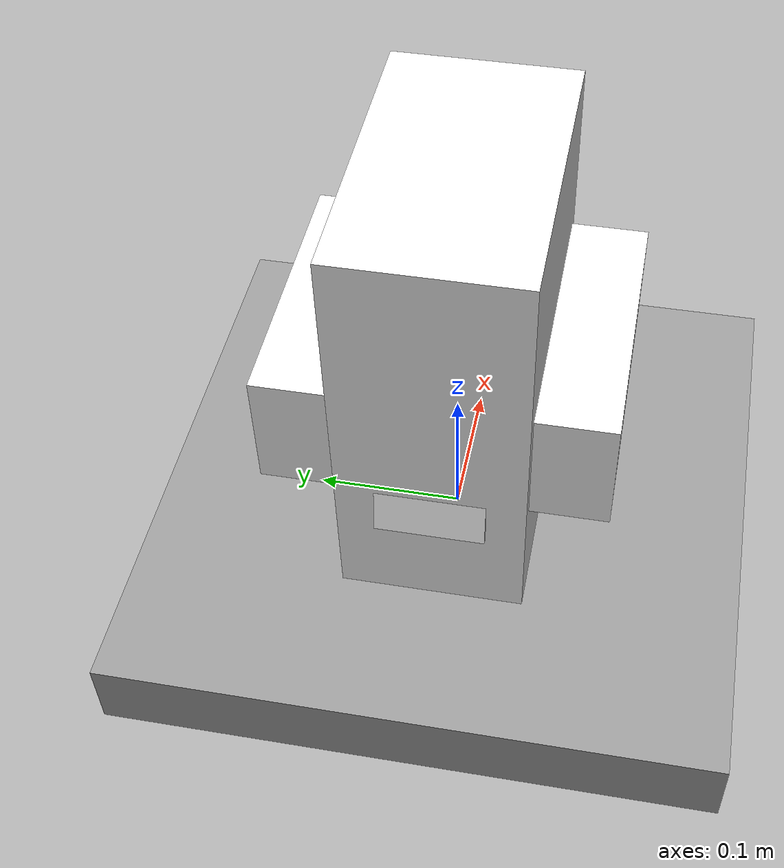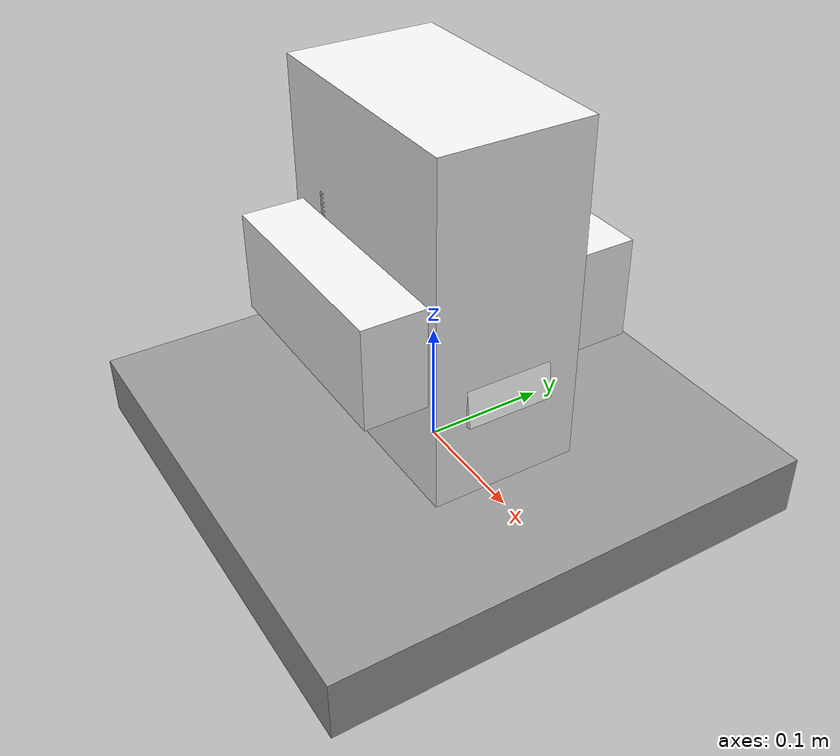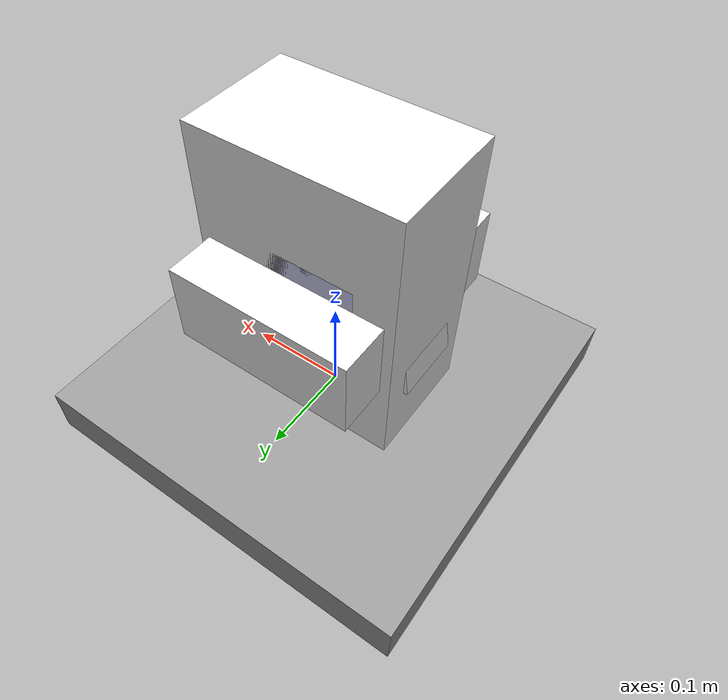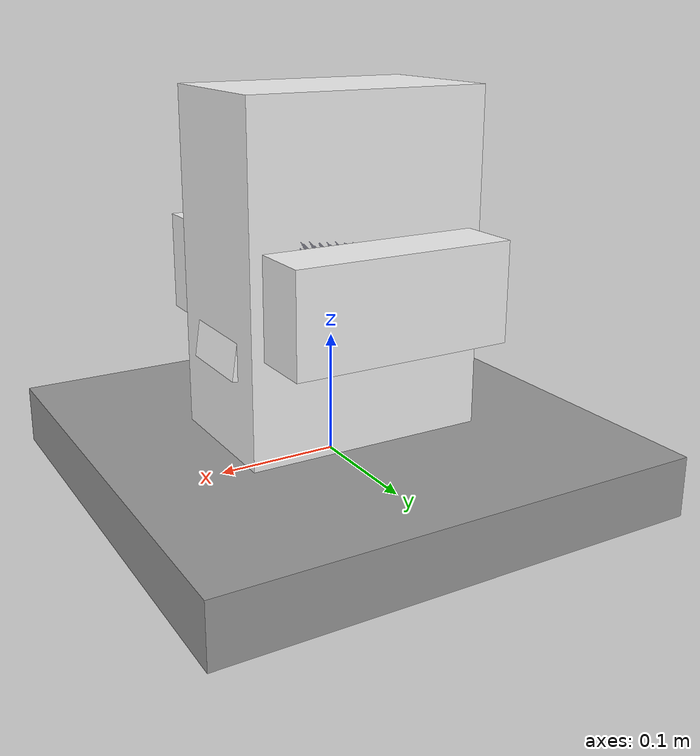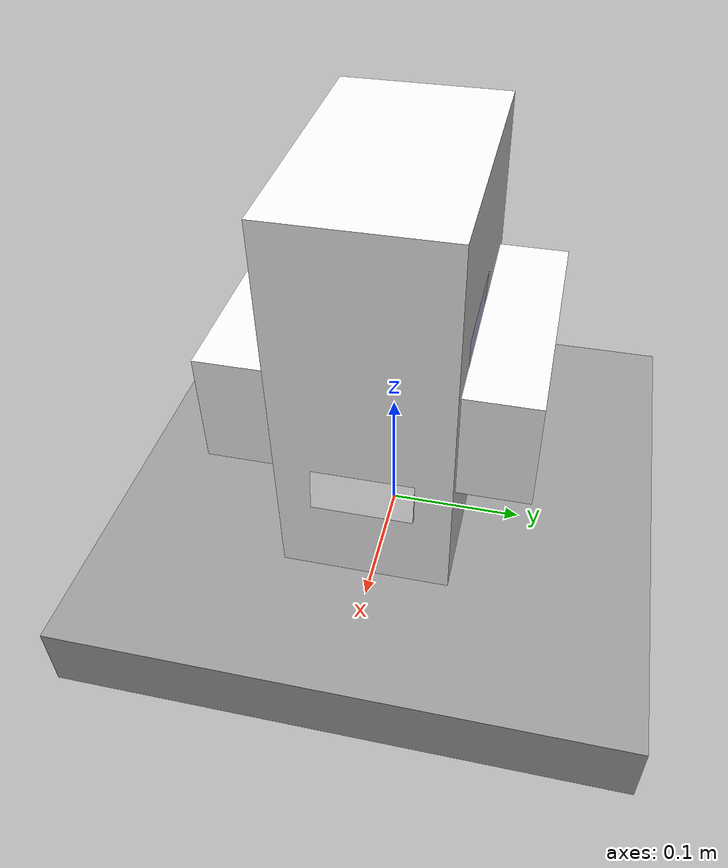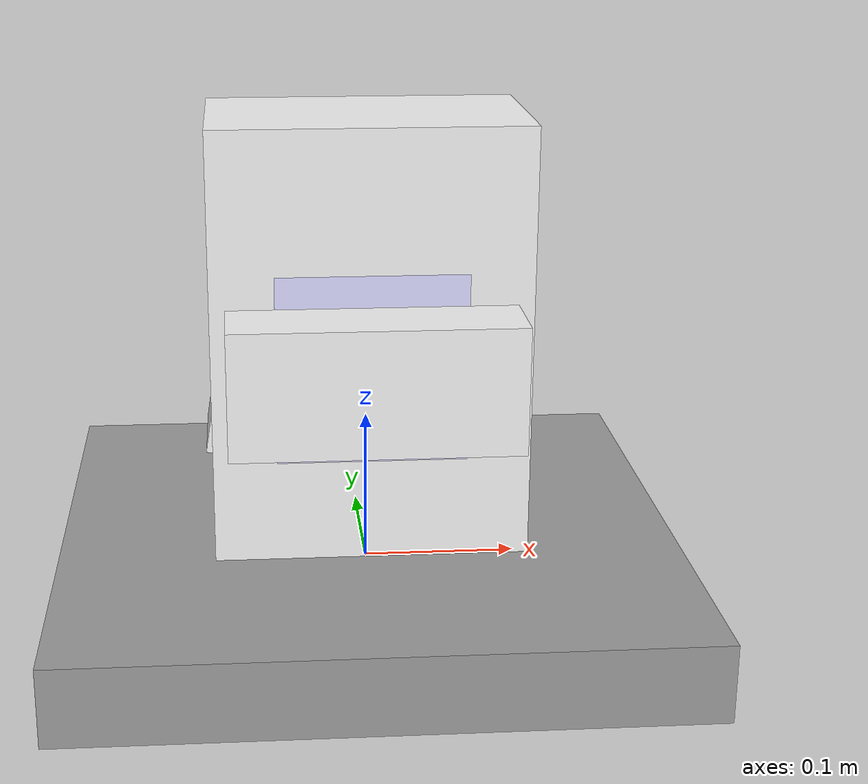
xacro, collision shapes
<?xml version="1.0"?>
<robot xmlns:xacro="http://www.ros.org/wiki/xacro" name="cori">

  <material name="cori_white">
    <color rgba="0.95 0.95 0.95 1.0"/>
  </material>

  <material name="cori_head">
    <color rgba="0.85 0.85 1.0 1.0"/>
  </material>

  <link name="base_link">
    <inertial>
      <mass value="30.0"/>
      <origin xyz="0 0 0"/>
      <inertia ixx="2.0" ixy="0.0" ixz="0.0" iyy="2.0" iyz="0.0" izz="2.0"/>
    </inertial>
    <collision>
      <geometry>
        <box size="0.4 0.4 0.05"/>
      </geometry>
    </collision>
  </link>

  <link name="torso">
    <visual>
      <origin xyz="0 0 0" rpy="0 0 0"/>
      <geometry>
        <mesh filename="file:///home/juptegraph/Workspaces/Robotics/Projects/CORI/cori_ws/src/cori_description/meshes/cori_body_v1.0/cori_torso.stl" scale="0.35 0.35 0.35"/>
      </geometry>
      <material name="cori_white"/>
    </visual>
    <collision>
      <geometry>
        <box size="0.2 0.12 0.3"/>
      </geometry>
    </collision>
    <inertial>
      <mass value="12.0"/>
      <origin xyz="0 0 0"/>
      <inertia ixx="0.4" ixy="0.0" ixz="0.0" iyy="0.4" iyz="0.0" izz="0.25"/>
    </inertial>
  </link>

  <joint name="base_to_torso" type="fixed">
    <parent link="base_link"/>
    <child link="torso"/>
    <origin xyz="0 0 0.15" rpy="0 0 0"/>
  </joint>

  <link name="head">
    <visual>
      <origin xyz="0 0 0" rpy="0 0 0"/>
      <geometry>
        <mesh filename="file:///home/juptegraph/Workspaces/Robotics/Projects/CORI/cori_ws/src/cori_description/meshes/cori_body_v1.0/cori_head.stl" scale="0.35 0.35 0.35"/>
      </geometry>
      <material name="cori_head"/>
    </visual>
    <collision>
      <geometry>
        <box size="0.12 0.12 0.12"/>
      </geometry>
    </collision>
    <inertial>
      <mass value="1.8"/>
      <origin xyz="0 0 0"/>
      <inertia ixx="0.018" ixy="0.0" ixz="0.0" iyy="0.018" iyz="0.0" izz="0.018"/>
    </inertial>
  </link>

  <joint name="head_joint" type="revolute">
    <parent link="torso"/>
    <child link="head"/>
    <origin xyz="0 0 0.0" rpy="0 0 0"/>
    <axis xyz="0 0 1"/>  <!-- Fixed: inverted Z axis for correct direction -->
    <limit lower="-1.8" upper="1.8" effort="80" velocity="2.5"/>
    <dynamics damping="1.8" friction="0.9"/>
  </joint>

  <link name="pelvis">
    <visual>
      <origin xyz="0 0 0" rpy="0 0 0"/>
      <geometry>
        <mesh filename="file:///home/juptegraph/Workspaces/Robotics/Projects/CORI/cori_ws/src/cori_description/meshes/cori_body_v1.0/cori_pelvis.stl" scale="0.35 0.35 0.35"/>
      </geometry>
      <material name="cori_white"/>
    </visual>
    <collision>
      <geometry>
        <box size="0.18 0.22 0.08"/>
      </geometry>
    </collision>
    <inertial>
      <mass value="2.5"/>
      <origin xyz="0 0 0"/>
      <inertia ixx="0.025" ixy="0.0" ixz="0.0" iyy="0.03" iyz="0.0" izz="0.025"/>
    </inertial>
  </link>

  <joint name="torso_to_pelvis" type="fixed">
    <parent link="torso"/>
    <child link="pelvis"/>
    <origin xyz="0 0 0" rpy="0 0 0"/>  <!-- Keep your spacing -->
  </joint>

  <link name="left_upper_arm">
    <visual>
      <origin xyz="0 0 0" rpy="0 0 0"/>
      <geometry>
        <mesh filename="file:///home/juptegraph/Workspaces/Robotics/Projects/CORI/cori_ws/src/cori_description/meshes/cori_body_v1.0/cori_left_upper_arm.stl" scale="0.35 0.35 0.35"/>
      </geometry>
      <material name="cori_white"/>
    </visual>
    <collision>
      <geometry>
        <box size="0.05 0.07 0.13"/>
      </geometry>
    </collision>
    <inertial>
      <mass value="0.9"/>
      <origin xyz="0 0 -0.065"/>
      <inertia ixx="0.015" ixy="0.0" ixz="0.0" iyy="0.015" iyz="0.0" izz="0.008"/>
    </inertial>
  </link>

  <joint name="left_shoulder_joint" type="revolute">
    <parent link="torso"/>
    <child link="left_upper_arm"/>
    <origin xyz="-0.07 0 0" rpy="0 0.15 0"/>  <!-- Keep your exact spacing -->
    <axis xyz="1 0 0"/>  <!-- Shoulder rotation -->
    <limit lower="-2.0" upper="2.0" effort="50" velocity="2.0"/>
    <dynamics damping="1.0" friction="0.5"/>
  </joint>

  <link name="left_forearm">
    <visual>
      <origin xyz="0 0 0" rpy="0 0 0"/>
      <geometry>
        <mesh filename="file:///home/juptegraph/Workspaces/Robotics/Projects/CORI/cori_ws/src/cori_description/meshes/cori_body_v1.0/cori_left_forearm.stl" scale="0.35 0.35 0.35"/>
      </geometry>
      <material name="cori_white"/>
    </visual>
    <collision>
      <geometry>
        <box size="0.04 0.06 0.11"/>
      </geometry>
    </collision>
    <inertial>
      <mass value="0.55"/>
      <origin xyz="0 0 -0.055"/>
      <inertia ixx="0.012" ixy="0.0" ixz="0.0" iyy="0.012" iyz="0.0" izz="0.006"/>
    </inertial>
  </link>

  <joint name="left_elbow_joint" type="revolute">
    <parent link="left_upper_arm"/>
    <child link="left_forearm"/>
    <origin xyz="0 0 0" rpy="0 0 0"/>  <!-- Keep your exact spacing -->
    <axis xyz="0 1 0"/>  <!-- Elbow bend -->
    <limit lower="-1.5" upper="1.5" effort="30" velocity="2.0"/>
    <dynamics damping="0.8" friction="0.3"/>
  </joint>

  <link name="left_hand">
    <visual>
      <origin xyz="0 0 0" rpy="0 0 0"/>
      <geometry>
        <mesh filename="file:///home/juptegraph/Workspaces/Robotics/Projects/CORI/cori_ws/src/cori_description/meshes/cori_body_v1.0/cori_left_hand.stl" scale="0.35 0.35 0.35"/>
      </geometry>
      <material name="cori_white"/>
    </visual>
    <collision>
      <geometry>
        <box size="0.05 0.035 0.07"/>
      </geometry>
    </collision>
    <inertial>
      <mass value="0.25"/>
      <origin xyz="0 0 0"/>
      <inertia ixx="0.008" ixy="0.0" ixz="0.0" iyy="0.008" iyz="0.0" izz="0.008"/>
    </inertial>
  </link>

  <joint name="left_wrist_joint" type="revolute">
    <parent link="left_forearm"/>
    <child link="left_hand"/>
    <origin xyz="0 0 0" rpy="0 0 0"/>  <!-- Keep your exact spacing -->
    <axis xyz="0 0 1"/>  <!-- Wrist rotation -->
    <limit lower="-1.0" upper="1.0" effort="20" velocity="2.0"/>
    <dynamics damping="0.5" friction="0.2"/>
  </joint>

  <link name="right_upper_arm">
    <visual>
      <origin xyz="0 0 0" rpy="0 0 0"/>
      <geometry>
        <mesh filename="file:///home/juptegraph/Workspaces/Robotics/Projects/CORI/cori_ws/src/cori_description/meshes/cori_body_v1.0/cori_right_upper_arm.stl" scale="0.35 0.35 0.35"/>
      </geometry>
      <material name="cori_white"/>
    </visual>
    <collision>
      <geometry>
        <box size="0.05 0.07 0.13"/>
      </geometry>
    </collision>
    <inertial>
      <mass value="0.9"/>
      <origin xyz="0 0 -0.065"/>
      <inertia ixx="0.015" ixy="0.0" ixz="0.0" iyy="0.015" iyz="0.0" izz="0.008"/>
    </inertial>
  </link>

  <joint name="right_shoulder_joint" type="revolute">
    <parent link="torso"/>
    <child link="right_upper_arm"/>
    <origin xyz="0.07 0 0" rpy="0 -0.15 0"/>  <!-- Keep your exact spacing -->
    <axis xyz="1 0 0"/>  <!-- Shoulder rotation -->
    <limit lower="-2.0" upper="2.0" effort="50" velocity="2.0"/>
    <dynamics damping="1.0" friction="0.5"/>
  </joint>

  <link name="right_forearm">
    <visual>
      <origin xyz="0 0 0" rpy="0 0 0"/>
      <geometry>
        <mesh filename="file:///home/juptegraph/Workspaces/Robotics/Projects/CORI/cori_ws/src/cori_description/meshes/cori_body_v1.0/cori_right_forearm.stl" scale="0.35 0.35 0.35"/>
      </geometry>
      <material name="cori_white"/>
    </visual>
    <collision>
      <geometry>
        <box size="0.04 0.06 0.11"/>
      </geometry>
    </collision>
    <inertial>
      <mass value="0.55"/>
      <origin xyz="0 0 -0.055"/>
      <inertia ixx="0.012" ixy="0.0" ixz="0.0" iyy="0.012" iyz="0.0" izz="0.006"/>
    </inertial>
  </link>

  <joint name="right_elbow_joint" type="revolute">
    <parent link="right_upper_arm"/>
    <child link="right_forearm"/>
    <origin xyz="0 0 0" rpy="0 0 0"/>  <!-- Keep your exact spacing -->
    <axis xyz="0 1 0"/>  <!-- Elbow bend -->
    <limit lower="-1.5" upper="1.5" effort="30" velocity="2.0"/>
    <dynamics damping="0.8" friction="0.3"/>
  </joint>

  <link name="right_hand">
    <visual>
      <origin xyz="0 0 0" rpy="0 0 0"/>
      <geometry>
        <mesh filename="file:///home/juptegraph/Workspaces/Robotics/Projects/CORI/cori_ws/src/cori_description/meshes/cori_body_v1.0/cori_right_hand.stl" scale="0.35 0.35 0.35"/>
      </geometry>
      <material name="cori_white"/>
    </visual>
    <collision>
      <geometry>
        <box size="0.05 0.035 0.07"/>
      </geometry>
    </collision>
    <inertial>
      <mass value="0.25"/>
      <origin xyz="0 0 0"/>
      <inertia ixx="0.008" ixy="0.0" ixz="0.0" iyy="0.008" iyz="0.0" izz="0.008"/>
    </inertial>
  </link>

  <joint name="right_wrist_joint" type="revolute">
    <parent link="right_forearm"/>
    <child link="right_hand"/>
    <origin xyz="0 0 0" rpy="0 0 0"/>  <!-- Keep your exact spacing -->
    <axis xyz="0 0 1"/>  <!-- Wrist rotation -->
    <limit lower="-1.0" upper="1.0" effort="20" velocity="2.0"/>
    <dynamics damping="0.5" friction="0.2"/>
  </joint>

  <link name="left_thigh">
    <visual>
      <origin xyz="0 0 0" rpy="0 0 0"/>
      <geometry>
        <mesh filename="file:///home/juptegraph/Workspaces/Robotics/Projects/CORI/cori_ws/src/cori_description/meshes/cori_body_v1.0/cori_left_thigh.stl" scale="0.35 0.35 0.35"/>
      </geometry>
      <material name="cori_white"/>
    </visual>
    <collision>
      <geometry>
        <box size="0.07 0.09 0.16"/>
      </geometry>
    </collision>
    <inertial>
      <mass value="1.8"/>
      <origin xyz="0 0 -0.08"/>
      <inertia ixx="0.035" ixy="0.0" ixz="0.0" iyy="0.035" iyz="0.0" izz="0.018"/>
    </inertial>
  </link>

  <joint name="left_hip_joint" type="revolute">
    <parent link="pelvis"/>
    <child link="left_thigh"/>
    <origin xyz="0 0 0" rpy="0 0 0"/>  <!-- Keep your exact spacing -->
    <axis xyz="1 0 0"/>  <!-- Hip forward/back -->
    <limit lower="-1.0" upper="1.0" effort="60" velocity="1.5"/>
    <dynamics damping="1.5" friction="0.7"/>
  </joint>

  <link name="left_shin">
    <visual>
      <origin xyz="0 0 0" rpy="0 0 0"/>
      <geometry>
        <mesh filename="file:///home/juptegraph/Workspaces/Robotics/Projects/CORI/cori_ws/src/cori_description/meshes/cori_body_v1.0/cori_left_shin.stl" scale="0.35 0.35 0.35"/>
      </geometry>
      <material name="cori_white"/>
    </visual>
    <collision>
      <geometry>
        <box size="0.055 0.07 0.13"/>
      </geometry>
    </collision>
    <inertial>
      <mass value="0.9"/>
      <origin xyz="0 0 -0.065"/>
      <inertia ixx="0.018" ixy="0.0" ixz="0.0" iyy="0.018" iyz="0.0" izz="0.009"/>
    </inertial>
  </link>

  <joint name="left_knee_joint" type="revolute">
    <parent link="left_thigh"/>
    <child link="left_shin"/>
    <origin xyz="0 0 0" rpy="0 0 0"/>  <!-- Keep your exact spacing -->
    <axis xyz="0 1 0"/>  <!-- Knee bend -->
    <limit lower="-1.5" upper="0.1" effort="40" velocity="1.5"/>
    <dynamics damping="1.2" friction="0.6"/>
  </joint>

  <link name="left_knee">
    <visual>
      <origin xyz="0 0 0" rpy="0 0 0"/>
      <geometry>
        <mesh filename="file:///home/juptegraph/Workspaces/Robotics/Projects/CORI/cori_ws/src/cori_description/meshes/cori_body_v1.0/cori_left_knee.stl" scale="0.35 0.35 0.35"/>
      </geometry>
      <material name="cori_white"/>
    </visual>
    <collision>
      <geometry>
        <sphere radius="0.035"/>
      </geometry>
    </collision>
    <inertial>
      <mass value="0.25"/>
      <origin xyz="0 0 0"/>
      <inertia ixx="0.004" ixy="0.0" ixz="0.0" iyy="0.004" iyz="0.0" izz="0.004"/>
    </inertial>
  </link>

  <joint name="left_shin_to_knee" type="fixed">
    <parent link="left_shin"/>
    <child link="left_knee"/>
    <origin xyz="0 0 0" rpy="0 0 0"/>  <!-- Keep your exact spacing -->
  </joint>

  <link name="left_foot">
    <visual>
      <origin xyz="0 0 0" rpy="0 0 0"/>
      <geometry>
        <mesh filename="file:///home/juptegraph/Workspaces/Robotics/Projects/CORI/cori_ws/src/cori_description/meshes/cori_body_v1.0/cori_left_foot.stl" scale="0.35 0.35 0.35"/>
      </geometry>
      <material name="cori_white"/>
    </visual>
    <collision>
      <geometry>
        <box size="0.11 0.055 0.035"/>
      </geometry>
    </collision>
    <inertial>
      <mass value="0.7"/>
      <origin xyz="0 0 0"/>
      <inertia ixx="0.008" ixy="0.0" ixz="0.0" iyy="0.012" iyz="0.0" izz="0.008"/>
    </inertial>
  </link>

  <joint name="left_ankle_joint" type="revolute">
    <parent link="left_knee"/>
    <child link="left_foot"/>
    <origin xyz="0 0 0" rpy="0 0 0"/>  <!-- Keep your exact spacing -->
    <axis xyz="0 1 0"/>  <!-- Ankle up/down -->
    <limit lower="-0.5" upper="0.5" effort="25" velocity="1.5"/>
    <dynamics damping="0.8" friction="0.4"/>
  </joint>

  <link name="right_thigh">
    <visual>
      <origin xyz="0 0 0" rpy="0 0 0"/>
      <geometry>
        <mesh filename="file:///home/juptegraph/Workspaces/Robotics/Projects/CORI/cori_ws/src/cori_description/meshes/cori_body_v1.0/cori_right_thigh.stl" scale="0.35 0.35 0.35"/>
      </geometry>
      <material name="cori_white"/>
    </visual>
    <collision>
      <geometry>
        <box size="0.07 0.09 0.16"/>
      </geometry>
    </collision>
    <inertial>
      <mass value="1.8"/>
      <origin xyz="0 0 -0.08"/>
      <inertia ixx="0.035" ixy="0.0" ixz="0.0" iyy="0.035" iyz="0.0" izz="0.018"/>
    </inertial>
  </link>

  <joint name="right_hip_joint" type="revolute">
    <parent link="pelvis"/>
    <child link="right_thigh"/>
    <origin xyz="0 0 0" rpy="0 0 0"/>  <!-- Keep your exact spacing -->
    <axis xyz="1 0 0"/>  <!-- Hip forward/back -->
    <limit lower="-1.0" upper="1.0" effort="60" velocity="1.5"/>
    <dynamics damping="1.5" friction="0.7"/>
  </joint>

  <link name="right_shin">
    <visual>
      <origin xyz="0 0 0" rpy="0 0 0"/>
      <geometry>
        <mesh filename="file:///home/juptegraph/Workspaces/Robotics/Projects/CORI/cori_ws/src/cori_description/meshes/cori_body_v1.0/cori_right_shin.stl" scale="0.35 0.35 0.35"/>
      </geometry>
      <material name="cori_white"/>
    </visual>
    <collision>
      <geometry>
        <box size="0.055 0.07 0.13"/>
      </geometry>
    </collision>
    <inertial>
      <mass value="0.9"/>
      <origin xyz="0 0 -0.065"/>
      <inertia ixx="0.018" ixy="0.0" ixz="0.0" iyy="0.018" iyz="0.0" izz="0.009"/>
    </inertial>
  </link>

  <joint name="right_knee_joint" type="revolute">
    <parent link="right_thigh"/>
    <child link="right_shin"/>
    <origin xyz="0 0 0" rpy="0 0 0"/>  <!-- Keep your exact spacing -->
    <axis xyz="0 1 0"/>  <!-- Knee bend -->
    <limit lower="-1.5" upper="0.1" effort="40" velocity="1.5"/>
    <dynamics damping="1.2" friction="0.6"/>
  </joint>

  <link name="right_knee">
    <visual>
      <origin xyz="0 0 0" rpy="0 0 0"/>
      <geometry>
        <mesh filename="file:///home/juptegraph/Workspaces/Robotics/Projects/CORI/cori_ws/src/cori_description/meshes/cori_body_v1.0/cori_right_knee.stl" scale="0.35 0.35 0.35"/>
      </geometry>
      <material name="cori_white"/>
    </visual>
    <collision>
      <geometry>
        <sphere radius="0.035"/>
      </geometry>
    </collision>
    <inertial>
      <mass value="0.25"/>
      <origin xyz="0 0 0"/>
      <inertia ixx="0.004" ixy="0.0" ixz="0.0" iyy="0.004" iyz="0.0" izz="0.004"/>
    </inertial>
  </link>

  <joint name="right_shin_to_knee" type="fixed">
    <parent link="right_shin"/>
    <child link="right_knee"/>
    <origin xyz="0 0 0" rpy="0 0 0"/>  <!-- Keep your exact spacing -->
  </joint>

  <link name="right_foot">
    <visual>
      <origin xyz="0 0 0" rpy="0 0 0"/>
      <geometry>
        <mesh filename="file:///home/juptegraph/Workspaces/Robotics/Projects/CORI/cori_ws/src/cori_description/meshes/cori_body_v1.0/cori_right_foot.stl" scale="0.35 0.35 0.35"/>
      </geometry>
      <material name="cori_white"/>
    </visual>
    <collision>
      <geometry>
        <box size="0.11 0.055 0.035"/>
      </geometry>
    </collision>
    <inertial>
      <mass value="0.7"/>
      <origin xyz="0 0 0"/>
      <inertia ixx="0.008" ixy="0.0" ixz="0.0" iyy="0.012" iyz="0.0" izz="0.008"/>
    </inertial>
  </link>

  <joint name="right_ankle_joint" type="revolute">
    <parent link="right_knee"/>
    <child link="right_foot"/>
    <origin xyz="0 0 0" rpy="0 0 0"/>  <!-- Keep your exact spacing -->
    <axis xyz="0 1 0"/>  <!-- Ankle up/down -->
    <limit lower="-0.5" upper="0.5" effort="25" velocity="1.5"/>
    <dynamics damping="0.8" friction="0.4"/>
  </joint>

  <gazebo reference="base_link">
    <static>false</static>
    <gravity>true</gravity>
    <material>Gazebo/Grey</material>
  </gazebo>

  <gazebo reference="torso">
    <material>Gazebo/White</material>
  </gazebo>

  <gazebo reference="head">
    <material>Gazebo/Blue</material>
  </gazebo>

  <!-- Joint Controllers for ALL movable joints -->
  <gazebo>
    <plugin filename="ignition-gazebo-joint-position-controller-system" name="ignition::gazebo::systems::JointPositionController">
      <joint_name>head_joint</joint_name>
      <topic>/model/cori/joint/head_joint/cmd_pos</topic>
      <p_gain>2500</p_gain>
      <i_gain>250</i_gain>
      <d_gain>75</d_gain>
    </plugin>
  </gazebo>

  <gazebo>
    <plugin filename="ignition-gazebo-joint-position-controller-system" name="ignition::gazebo::systems::JointPositionController">
      <joint_name>left_shoulder_joint</joint_name>
      <topic>/model/cori/joint/left_shoulder_joint/cmd_pos</topic>
      <p_gain>2000</p_gain>
      <i_gain>200</i_gain>
      <d_gain>60</d_gain>
    </plugin>
  </gazebo>

  <gazebo>
    <plugin filename="ignition-gazebo-joint-position-controller-system" name="ignition::gazebo::systems::JointPositionController">
      <joint_name>left_elbow_joint</joint_name>
      <topic>/model/cori/joint/left_elbow_joint/cmd_pos</topic>
      <p_gain>1500</p_gain>
      <i_gain>150</i_gain>
      <d_gain>45</d_gain>
    </plugin>
  </gazebo>

  <gazebo>
    <plugin filename="ignition-gazebo-joint-position-controller-system" name="ignition::gazebo::systems::JointPositionController">
      <joint_name>left_wrist_joint</joint_name>
      <topic>/model/cori/joint/left_wrist_joint/cmd_pos</topic>
      <p_gain>1000</p_gain>
      <i_gain>100</i_gain>
      <d_gain>30</d_gain>
    </plugin>
  </gazebo>

  <gazebo>
    <plugin filename="ignition-gazebo-joint-position-controller-system" name="ignition::gazebo::systems::JointPositionController">
      <joint_name>right_shoulder_joint</joint_name>
      <topic>/model/cori/joint/right_shoulder_joint/cmd_pos</topic>
      <p_gain>2000</p_gain>
      <i_gain>200</i_gain>
      <d_gain>60</d_gain>
    </plugin>
  </gazebo>

  <gazebo>
    <plugin filename="ignition-gazebo-joint-position-controller-system" name="ignition::gazebo::systems::JointPositionController">
      <joint_name>right_elbow_joint</joint_name>
      <topic>/model/cori/joint/right_elbow_joint/cmd_pos</topic>
      <p_gain>1500</p_gain>
      <i_gain>150</i_gain>
      <d_gain>45</d_gain>
    </plugin>
  </gazebo>

  <gazebo>
    <plugin filename="ignition-gazebo-joint-position-controller-system" name="ignition::gazebo::systems::JointPositionController">
      <joint_name>right_wrist_joint</joint_name>
      <topic>/model/cori/joint/right_wrist_joint/cmd_pos</topic>
      <p_gain>1000</p_gain>
      <i_gain>100</i_gain>
      <d_gain>30</d_gain>
    </plugin>
  </gazebo>

  <gazebo>
    <plugin filename="ignition-gazebo-joint-position-controller-system" name="ignition::gazebo::systems::JointPositionController">
      <joint_name>left_hip_joint</joint_name>
      <topic>/model/cori/joint/left_hip_joint/cmd_pos</topic>
      <p_gain>2500</p_gain>
      <i_gain>250</i_gain>
      <d_gain>75</d_gain>
    </plugin>
  </gazebo>

  <gazebo>
    <plugin filename="ignition-gazebo-joint-position-controller-system" name="ignition::gazebo::systems::JointPositionController">
      <joint_name>left_knee_joint</joint_name>
      <topic>/model/cori/joint/left_knee_joint/cmd_pos</topic>
      <p_gain>2000</p_gain>
      <i_gain>200</i_gain>
      <d_gain>60</d_gain>
    </plugin>
  </gazebo>

  <gazebo>
    <plugin filename="ignition-gazebo-joint-position-controller-system" name="ignition::gazebo::systems::JointPositionController">
      <joint_name>left_ankle_joint</joint_name>
      <topic>/model/cori/joint/left_ankle_joint/cmd_pos</topic>
      <p_gain>1200</p_gain>
      <i_gain>120</i_gain>
      <d_gain>36</d_gain>
    </plugin>
  </gazebo>

  <gazebo>
    <plugin filename="ignition-gazebo-joint-position-controller-system" name="ignition::gazebo::systems::JointPositionController">
      <joint_name>right_hip_joint</joint_name>
      <topic>/model/cori/joint/right_hip_joint/cmd_pos</topic>
      <p_gain>2500</p_gain>
      <i_gain>250</i_gain>
      <d_gain>75</d_gain>
    </plugin>
  </gazebo>

  <gazebo>
    <plugin filename="ignition-gazebo-joint-position-controller-system" name="ignition::gazebo::systems::JointPositionController">
      <joint_name>right_knee_joint</joint_name>
      <topic>/model/cori/joint/right_knee_joint/cmd_pos</topic>
      <p_gain>2000</p_gain>
      <i_gain>200</i_gain>
      <d_gain>60</d_gain>
    </plugin>
  </gazebo>

  <gazebo>
    <plugin filename="ignition-gazebo-joint-position-controller-system" name="ignition::gazebo::systems::JointPositionController">
      <joint_name>right_ankle_joint</joint_name>
      <topic>/model/cori/joint/right_ankle_joint/cmd_pos</topic>
      <p_gain>1200</p_gain>
      <i_gain>120</i_gain>
      <d_gain>36</d_gain>
    </plugin>
  </gazebo>

  <gazebo>
    <plugin filename="ignition-gazebo-joint-state-publisher-system" name="ignition::gazebo::systems::JointStatePublisher">
      <joint_name>head_joint</joint_name>
      <joint_name>left_shoulder_joint</joint_name>
      <joint_name>left_elbow_joint</joint_name>
      <joint_name>left_wrist_joint</joint_name>
      <joint_name>right_shoulder_joint</joint_name>
      <joint_name>right_elbow_joint</joint_name>
      <joint_name>right_wrist_joint</joint_name>
      <joint_name>left_hip_joint</joint_name>
      <joint_name>left_knee_joint</joint_name>
      <joint_name>left_ankle_joint</joint_name>
      <joint_name>right_hip_joint</joint_name>
      <joint_name>right_knee_joint</joint_name>
      <joint_name>right_ankle_joint</joint_name>
    </plugin>
  </gazebo>

</robot>
